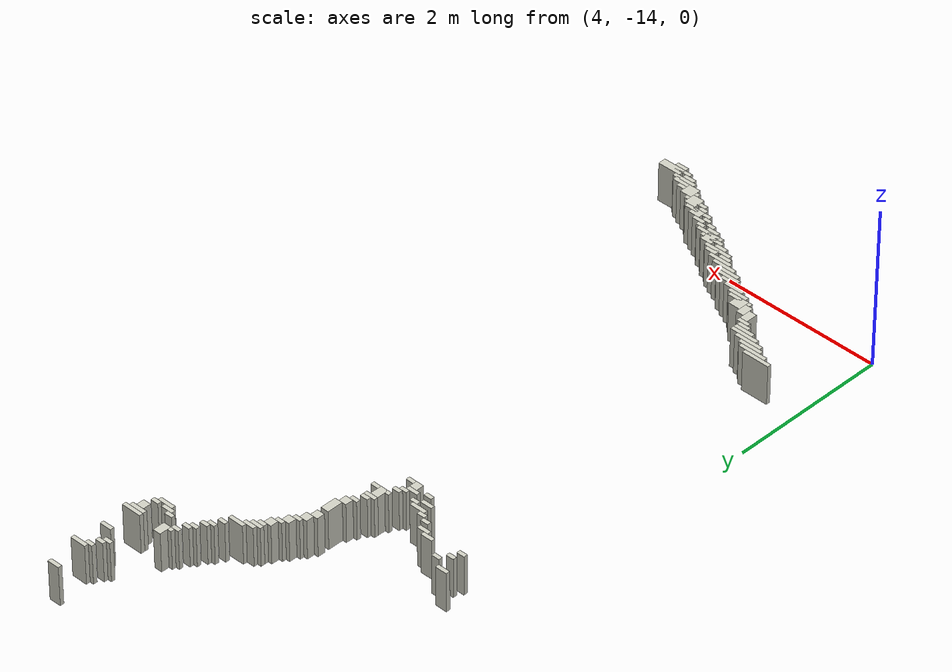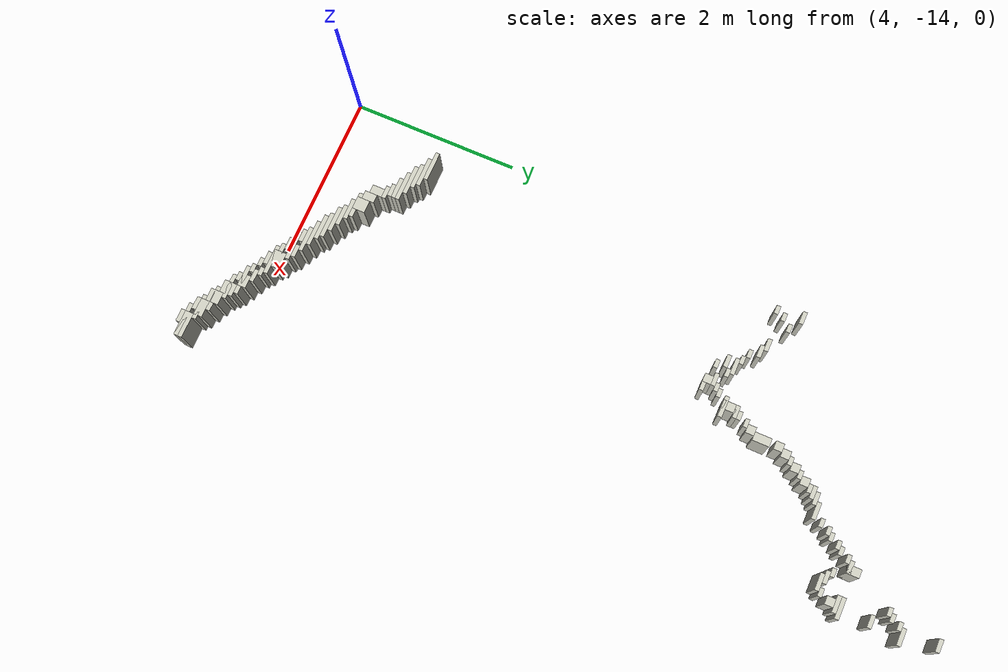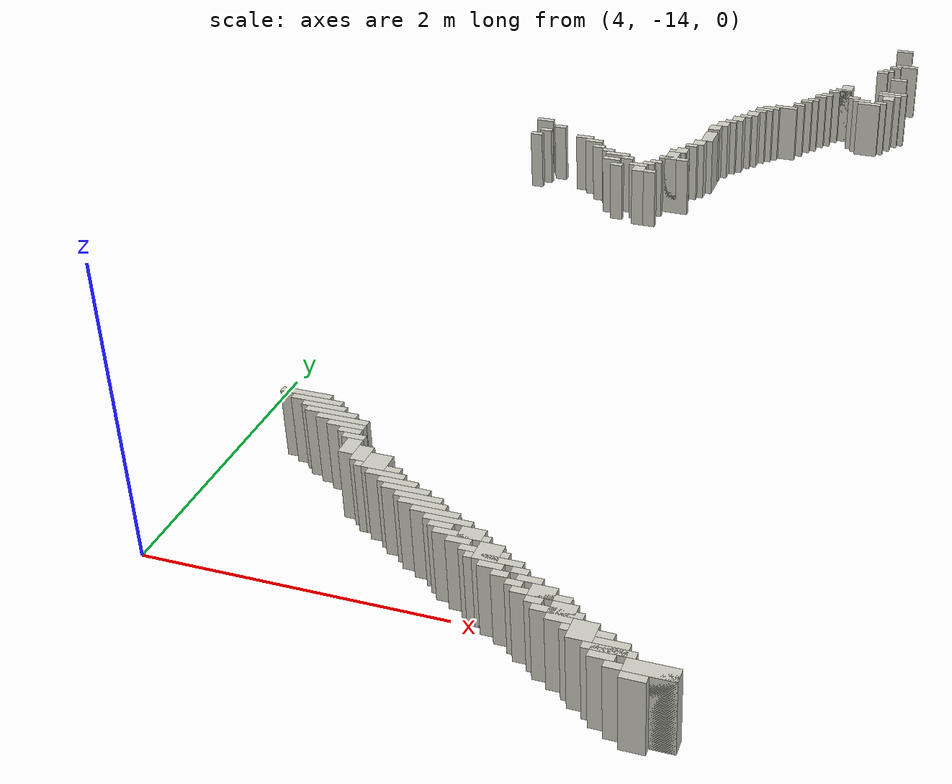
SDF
<sdf version="1.7">
 <world name="my_map_world">
  <model name="wall_391">
   <static>1</static>
   <pose>7.325 -5.575 0.25 0 -0 0</pose>
   <link name="link">
    <collision name="collision"><geometry><box><size>0.15 0.05 0.5</size></box></geometry></collision>
    <visual name="visual">
     <geometry><box><size>0.15 0.05 0.5</size></box></geometry>
     <material>
      <script><uri>file://media/materials/scripts/gazebo.material</uri><name>Gazebo/PaintedWall</name></script>
     </material>
    </visual>
   </link>
  </model>
  <model name="wall_412">
   <static>1</static>
   <pose>7.4 -5.975 0.25 0 -0 0</pose>
   <link name="link">
    <collision name="collision"><geometry><box><size>0.2 0.05 0.5</size></box></geometry></collision>
    <visual name="visual">
     <geometry><box><size>0.2 0.05 0.5</size></box></geometry>
     <material>
      <script><uri>file://media/materials/scripts/gazebo.material</uri><name>Gazebo/PaintedWall</name></script>
     </material>
    </visual>
   </link>
  </model>
  <model name="wall_414">
   <static>1</static>
   <pose>7.3 -6.025 0.25 0 -0 0</pose>
   <link name="link">
    <collision name="collision"><geometry><box><size>0.1 0.05 0.5</size></box></geometry></collision>
    <visual name="visual">
     <geometry><box><size>0.1 0.05 0.5</size></box></geometry>
     <material>
      <script><uri>file://media/materials/scripts/gazebo.material</uri><name>Gazebo/PaintedWall</name></script>
     </material>
    </visual>
   </link>
  </model>
  <model name="wall_419">
   <static>1</static>
   <pose>7.25 -6.125 0.25 0 -0 0</pose>
   <link name="link">
    <collision name="collision"><geometry><box><size>0.1 0.05 0.5</size></box></geometry></collision>
    <visual name="visual">
     <geometry><box><size>0.1 0.05 0.5</size></box></geometry>
     <material>
      <script><uri>file://media/materials/scripts/gazebo.material</uri><name>Gazebo/PaintedWall</name></script>
     </material>
    </visual>
   </link>
  </model>
  <model name="wall_421">
   <static>1</static>
   <pose>7.2 -6.175 0.25 0 -0 0</pose>
   <link name="link">
    <collision name="collision"><geometry><box><size>0.1 0.05 0.5</size></box></geometry></collision>
    <visual name="visual">
     <geometry><box><size>0.1 0.05 0.5</size></box></geometry>
     <material>
      <script><uri>file://media/materials/scripts/gazebo.material</uri><name>Gazebo/PaintedWall</name></script>
     </material>
    </visual>
   </link>
  </model>
  <model name="wall_424">
   <static>1</static>
   <pose>7.375 -6.325 0.25 0 -0 0</pose>
   <link name="link">
    <collision name="collision"><geometry><box><size>0.15 0.05 0.5</size></box></geometry></collision>
    <visual name="visual">
     <geometry><box><size>0.15 0.05 0.5</size></box></geometry>
     <material>
      <script><uri>file://media/materials/scripts/gazebo.material</uri><name>Gazebo/PaintedWall</name></script>
     </material>
    </visual>
   </link>
  </model>
  <model name="wall_435">
   <static>1</static>
   <pose>6.95 -6.675 0.25 0 -0 0</pose>
   <link name="link">
    <collision name="collision"><geometry><box><size>0.1 0.15 0.5</size></box></geometry></collision>
    <visual name="visual">
     <geometry><box><size>0.1 0.15 0.5</size></box></geometry>
     <material>
      <script><uri>file://media/materials/scripts/gazebo.material</uri><name>Gazebo/PaintedWall</name></script>
     </material>
    </visual>
   </link>
  </model>
  <model name="wall_437">
   <static>1</static>
   <pose>7.375 -6.675 0.25 0 -0 0</pose>
   <link name="link">
    <collision name="collision"><geometry><box><size>0.25 0.05 0.5</size></box></geometry></collision>
    <visual name="visual">
     <geometry><box><size>0.25 0.05 0.5</size></box></geometry>
     <material>
      <script><uri>file://media/materials/scripts/gazebo.material</uri><name>Gazebo/PaintedWall</name></script>
     </material>
    </visual>
   </link>
  </model>
  <model name="wall_439">
   <static>1</static>
   <pose>6.925 -6.725 0.25 0 -0 0</pose>
   <link name="link">
    <collision name="collision"><geometry><box><size>0.15 0.05 0.5</size></box></geometry></collision>
    <visual name="visual">
     <geometry><box><size>0.15 0.05 0.5</size></box></geometry>
     <material>
      <script><uri>file://media/materials/scripts/gazebo.material</uri><name>Gazebo/PaintedWall</name></script>
     </material>
    </visual>
   </link>
  </model>
  <model name="wall_440">
   <static>1</static>
   <pose>7.35 -6.725 0.25 0 -0 0</pose>
   <link name="link">
    <collision name="collision"><geometry><box><size>0.2 0.05 0.5</size></box></geometry></collision>
    <visual name="visual">
     <geometry><box><size>0.2 0.05 0.5</size></box></geometry>
     <material>
      <script><uri>file://media/materials/scripts/gazebo.material</uri><name>Gazebo/PaintedWall</name></script>
     </material>
    </visual>
   </link>
  </model>
  <model name="wall_441">
   <static>1</static>
   <pose>6.85 -6.775 0.25 0 -0 0</pose>
   <link name="link">
    <collision name="collision"><geometry><box><size>0.1 0.05 0.5</size></box></geometry></collision>
    <visual name="visual">
     <geometry><box><size>0.1 0.05 0.5</size></box></geometry>
     <material>
      <script><uri>file://media/materials/scripts/gazebo.material</uri><name>Gazebo/PaintedWall</name></script>
     </material>
    </visual>
   </link>
  </model>
  <model name="wall_442">
   <static>1</static>
   <pose>7.35 -6.8 0.25 0 -0 0</pose>
   <link name="link">
    <collision name="collision"><geometry><box><size>0.1 0.1 0.5</size></box></geometry></collision>
    <visual name="visual">
     <geometry><box><size>0.1 0.1 0.5</size></box></geometry>
     <material>
      <script><uri>file://media/materials/scripts/gazebo.material</uri><name>Gazebo/PaintedWall</name></script>
     </material>
    </visual>
   </link>
  </model>
  <model name="wall_445">
   <static>1</static>
   <pose>6.8 -6.875 0.25 0 -0 0</pose>
   <link name="link">
    <collision name="collision"><geometry><box><size>0.1 0.05 0.5</size></box></geometry></collision>
    <visual name="visual">
     <geometry><box><size>0.1 0.05 0.5</size></box></geometry>
     <material>
      <script><uri>file://media/materials/scripts/gazebo.material</uri><name>Gazebo/PaintedWall</name></script>
     </material>
    </visual>
   </link>
  </model>
  <model name="wall_446">
   <static>1</static>
   <pose>7.05 -6.875 0.25 0 -0 0</pose>
   <link name="link">
    <collision name="collision"><geometry><box><size>0.1 0.05 0.5</size></box></geometry></collision>
    <visual name="visual">
     <geometry><box><size>0.1 0.05 0.5</size></box></geometry>
     <material>
      <script><uri>file://media/materials/scripts/gazebo.material</uri><name>Gazebo/PaintedWall</name></script>
     </material>
    </visual>
   </link>
  </model>
  <model name="wall_448">
   <static>1</static>
   <pose>6.75 -6.925 0.25 0 -0 0</pose>
   <link name="link">
    <collision name="collision"><geometry><box><size>0.1 0.05 0.5</size></box></geometry></collision>
    <visual name="visual">
     <geometry><box><size>0.1 0.05 0.5</size></box></geometry>
     <material>
      <script><uri>file://media/materials/scripts/gazebo.material</uri><name>Gazebo/PaintedWall</name></script>
     </material>
    </visual>
   </link>
  </model>
  <model name="wall_449">
   <static>1</static>
   <pose>7.125 -6.925 0.25 0 -0 0</pose>
   <link name="link">
    <collision name="collision"><geometry><box><size>0.15 0.05 0.5</size></box></geometry></collision>
    <visual name="visual">
     <geometry><box><size>0.15 0.05 0.5</size></box></geometry>
     <material>
      <script><uri>file://media/materials/scripts/gazebo.material</uri><name>Gazebo/PaintedWall</name></script>
     </material>
    </visual>
   </link>
  </model>
  <model name="wall_450">
   <static>1</static>
   <pose>7.3 -6.925 0.25 0 -0 0</pose>
   <link name="link">
    <collision name="collision"><geometry><box><size>0.1 0.05 0.5</size></box></geometry></collision>
    <visual name="visual">
     <geometry><box><size>0.1 0.05 0.5</size></box></geometry>
     <material>
      <script><uri>file://media/materials/scripts/gazebo.material</uri><name>Gazebo/PaintedWall</name></script>
     </material>
    </visual>
   </link>
  </model>
  <model name="wall_452">
   <static>1</static>
   <pose>7.2 -6.975 0.25 0 -0 0</pose>
   <link name="link">
    <collision name="collision"><geometry><box><size>0.2 0.05 0.5</size></box></geometry></collision>
    <visual name="visual">
     <geometry><box><size>0.2 0.05 0.5</size></box></geometry>
     <material>
      <script><uri>file://media/materials/scripts/gazebo.material</uri><name>Gazebo/PaintedWall</name></script>
     </material>
    </visual>
   </link>
  </model>
  <model name="wall_454">
   <static>1</static>
   <pose>6.7 -7.025 0.25 0 -0 0</pose>
   <link name="link">
    <collision name="collision"><geometry><box><size>0.1 0.05 0.5</size></box></geometry></collision>
    <visual name="visual">
     <geometry><box><size>0.1 0.05 0.5</size></box></geometry>
     <material>
      <script><uri>file://media/materials/scripts/gazebo.material</uri><name>Gazebo/PaintedWall</name></script>
     </material>
    </visual>
   </link>
  </model>
  <model name="wall_456">
   <static>1</static>
   <pose>6.65 -7.075 0.25 0 -0 0</pose>
   <link name="link">
    <collision name="collision"><geometry><box><size>0.1 0.05 0.5</size></box></geometry></collision>
    <visual name="visual">
     <geometry><box><size>0.1 0.05 0.5</size></box></geometry>
     <material>
      <script><uri>file://media/materials/scripts/gazebo.material</uri><name>Gazebo/PaintedWall</name></script>
     </material>
    </visual>
   </link>
  </model>
  <model name="wall_458">
   <static>1</static>
   <pose>6.6 -7.175 0.25 0 -0 0</pose>
   <link name="link">
    <collision name="collision"><geometry><box><size>0.1 0.05 0.5</size></box></geometry></collision>
    <visual name="visual">
     <geometry><box><size>0.1 0.05 0.5</size></box></geometry>
     <material>
      <script><uri>file://media/materials/scripts/gazebo.material</uri><name>Gazebo/PaintedWall</name></script>
     </material>
    </visual>
   </link>
  </model>
  <model name="wall_461">
   <static>1</static>
   <pose>6.5 -7.275 0.25 0 -0 0</pose>
   <link name="link">
    <collision name="collision"><geometry><box><size>0.2 0.05 0.5</size></box></geometry></collision>
    <visual name="visual">
     <geometry><box><size>0.2 0.05 0.5</size></box></geometry>
     <material>
      <script><uri>file://media/materials/scripts/gazebo.material</uri><name>Gazebo/PaintedWall</name></script>
     </material>
    </visual>
   </link>
  </model>
  <model name="wall_463">
   <static>1</static>
   <pose>6.375 -7.325 0.25 0 -0 0</pose>
   <link name="link">
    <collision name="collision"><geometry><box><size>0.15 0.05 0.5</size></box></geometry></collision>
    <visual name="visual">
     <geometry><box><size>0.15 0.05 0.5</size></box></geometry>
     <material>
      <script><uri>file://media/materials/scripts/gazebo.material</uri><name>Gazebo/PaintedWall</name></script>
     </material>
    </visual>
   </link>
  </model>
  <model name="wall_465">
   <static>1</static>
   <pose>6.325 -7.375 0.25 0 -0 0</pose>
   <link name="link">
    <collision name="collision"><geometry><box><size>0.15 0.05 0.5</size></box></geometry></collision>
    <visual name="visual">
     <geometry><box><size>0.15 0.05 0.5</size></box></geometry>
     <material>
      <script><uri>file://media/materials/scripts/gazebo.material</uri><name>Gazebo/PaintedWall</name></script>
     </material>
    </visual>
   </link>
  </model>
  <model name="wall_467">
   <static>1</static>
   <pose>6.3 -7.425 0.25 0 -0 0</pose>
   <link name="link">
    <collision name="collision"><geometry><box><size>0.1 0.05 0.5</size></box></geometry></collision>
    <visual name="visual">
     <geometry><box><size>0.1 0.05 0.5</size></box></geometry>
     <material>
      <script><uri>file://media/materials/scripts/gazebo.material</uri><name>Gazebo/PaintedWall</name></script>
     </material>
    </visual>
   </link>
  </model>
  <model name="wall_469">
   <static>1</static>
   <pose>6.25 -7.5 0.25 0 -0 0</pose>
   <link name="link">
    <collision name="collision"><geometry><box><size>0.1 0.1 0.5</size></box></geometry></collision>
    <visual name="visual">
     <geometry><box><size>0.1 0.1 0.5</size></box></geometry>
     <material>
      <script><uri>file://media/materials/scripts/gazebo.material</uri><name>Gazebo/PaintedWall</name></script>
     </material>
    </visual>
   </link>
  </model>
  <model name="wall_471">
   <static>1</static>
   <pose>6.2 -7.575 0.25 0 -0 0</pose>
   <link name="link">
    <collision name="collision"><geometry><box><size>0.1 0.05 0.5</size></box></geometry></collision>
    <visual name="visual">
     <geometry><box><size>0.1 0.05 0.5</size></box></geometry>
     <material>
      <script><uri>file://media/materials/scripts/gazebo.material</uri><name>Gazebo/PaintedWall</name></script>
     </material>
    </visual>
   </link>
  </model>
  <model name="wall_473">
   <static>1</static>
   <pose>6.15 -7.65 0.25 0 -0 0</pose>
   <link name="link">
    <collision name="collision"><geometry><box><size>0.1 0.1 0.5</size></box></geometry></collision>
    <visual name="visual">
     <geometry><box><size>0.1 0.1 0.5</size></box></geometry>
     <material>
      <script><uri>file://media/materials/scripts/gazebo.material</uri><name>Gazebo/PaintedWall</name></script>
     </material>
    </visual>
   </link>
  </model>
  <model name="wall_476">
   <static>1</static>
   <pose>6.1 -7.725 0.25 0 -0 0</pose>
   <link name="link">
    <collision name="collision"><geometry><box><size>0.1 0.05 0.5</size></box></geometry></collision>
    <visual name="visual">
     <geometry><box><size>0.1 0.05 0.5</size></box></geometry>
     <material>
      <script><uri>file://media/materials/scripts/gazebo.material</uri><name>Gazebo/PaintedWall</name></script>
     </material>
    </visual>
   </link>
  </model>
  <model name="wall_478">
   <static>1</static>
   <pose>6.05 -7.8 0.25 0 -0 0</pose>
   <link name="link">
    <collision name="collision"><geometry><box><size>0.1 0.1 0.5</size></box></geometry></collision>
    <visual name="visual">
     <geometry><box><size>0.1 0.1 0.5</size></box></geometry>
     <material>
      <script><uri>file://media/materials/scripts/gazebo.material</uri><name>Gazebo/PaintedWall</name></script>
     </material>
    </visual>
   </link>
  </model>
  <model name="wall_480">
   <static>1</static>
   <pose>6 -7.9 0.25 0 -0 0</pose>
   <link name="link">
    <collision name="collision"><geometry><box><size>0.1 0.1 0.5</size></box></geometry></collision>
    <visual name="visual">
     <geometry><box><size>0.1 0.1 0.5</size></box></geometry>
     <material>
      <script><uri>file://media/materials/scripts/gazebo.material</uri><name>Gazebo/PaintedWall</name></script>
     </material>
    </visual>
   </link>
  </model>
  <model name="wall_485">
   <static>1</static>
   <pose>6 -8.1 0.25 0 -0 0</pose>
   <link name="link">
    <collision name="collision"><geometry><box><size>0.1 0.2 0.5</size></box></geometry></collision>
    <visual name="visual">
     <geometry><box><size>0.1 0.2 0.5</size></box></geometry>
     <material>
      <script><uri>file://media/materials/scripts/gazebo.material</uri><name>Gazebo/PaintedWall</name></script>
     </material>
    </visual>
   </link>
  </model>
  <model name="wall_487">
   <static>1</static>
   <pose>4.525 -8.175 0.25 0 -0 0</pose>
   <link name="link">
    <collision name="collision"><geometry><box><size>0.15 0.05 0.5</size></box></geometry></collision>
    <visual name="visual">
     <geometry><box><size>0.15 0.05 0.5</size></box></geometry>
     <material>
      <script><uri>file://media/materials/scripts/gazebo.material</uri><name>Gazebo/PaintedWall</name></script>
     </material>
    </visual>
   </link>
  </model>
  <model name="wall_489">
   <static>1</static>
   <pose>5.95 -8.25 0.25 0 -0 0</pose>
   <link name="link">
    <collision name="collision"><geometry><box><size>0.1 0.1 0.5</size></box></geometry></collision>
    <visual name="visual">
     <geometry><box><size>0.1 0.1 0.5</size></box></geometry>
     <material>
      <script><uri>file://media/materials/scripts/gazebo.material</uri><name>Gazebo/PaintedWall</name></script>
     </material>
    </visual>
   </link>
  </model>
  <model name="wall_492">
   <static>1</static>
   <pose>4.7 -8.275 0.25 0 -0 0</pose>
   <link name="link">
    <collision name="collision"><geometry><box><size>0.1 0.05 0.5</size></box></geometry></collision>
    <visual name="visual">
     <geometry><box><size>0.1 0.05 0.5</size></box></geometry>
     <material>
      <script><uri>file://media/materials/scripts/gazebo.material</uri><name>Gazebo/PaintedWall</name></script>
     </material>
    </visual>
   </link>
  </model>
  <model name="wall_494">
   <static>1</static>
   <pose>5.9 -8.325 0.25 0 -0 0</pose>
   <link name="link">
    <collision name="collision"><geometry><box><size>0.1 0.05 0.5</size></box></geometry></collision>
    <visual name="visual">
     <geometry><box><size>0.1 0.05 0.5</size></box></geometry>
     <material>
      <script><uri>file://media/materials/scripts/gazebo.material</uri><name>Gazebo/PaintedWall</name></script>
     </material>
    </visual>
   </link>
  </model>
  <model name="wall_496">
   <static>1</static>
   <pose>4.6 -8.375 0.25 0 -0 0</pose>
   <link name="link">
    <collision name="collision"><geometry><box><size>0.1 0.05 0.5</size></box></geometry></collision>
    <visual name="visual">
     <geometry><box><size>0.1 0.05 0.5</size></box></geometry>
     <material>
      <script><uri>file://media/materials/scripts/gazebo.material</uri><name>Gazebo/PaintedWall</name></script>
     </material>
    </visual>
   </link>
  </model>
  <model name="wall_499">
   <static>1</static>
   <pose>4.975 -8.425 0.25 0 -0 0</pose>
   <link name="link">
    <collision name="collision"><geometry><box><size>0.15 0.05 0.5</size></box></geometry></collision>
    <visual name="visual">
     <geometry><box><size>0.15 0.05 0.5</size></box></geometry>
     <material>
      <script><uri>file://media/materials/scripts/gazebo.material</uri><name>Gazebo/PaintedWall</name></script>
     </material>
    </visual>
   </link>
  </model>
  <model name="wall_500">
   <static>1</static>
   <pose>5.85 -8.45 0.25 0 -0 0</pose>
   <link name="link">
    <collision name="collision"><geometry><box><size>0.1 0.1 0.5</size></box></geometry></collision>
    <visual name="visual">
     <geometry><box><size>0.1 0.1 0.5</size></box></geometry>
     <material>
      <script><uri>file://media/materials/scripts/gazebo.material</uri><name>Gazebo/PaintedWall</name></script>
     </material>
    </visual>
   </link>
  </model>
  <model name="wall_503">
   <static>1</static>
   <pose>4.55 -8.475 0.25 0 -0 0</pose>
   <link name="link">
    <collision name="collision"><geometry><box><size>0.1 0.05 0.5</size></box></geometry></collision>
    <visual name="visual">
     <geometry><box><size>0.1 0.05 0.5</size></box></geometry>
     <material>
      <script><uri>file://media/materials/scripts/gazebo.material</uri><name>Gazebo/PaintedWall</name></script>
     </material>
    </visual>
   </link>
  </model>
  <model name="wall_504">
   <static>1</static>
   <pose>5.075 -8.475 0.25 0 -0 0</pose>
   <link name="link">
    <collision name="collision"><geometry><box><size>0.15 0.05 0.5</size></box></geometry></collision>
    <visual name="visual">
     <geometry><box><size>0.15 0.05 0.5</size></box></geometry>
     <material>
      <script><uri>file://media/materials/scripts/gazebo.material</uri><name>Gazebo/PaintedWall</name></script>
     </material>
    </visual>
   </link>
  </model>
  <model name="wall_505">
   <static>1</static>
   <pose>5.825 -8.475 0.25 0 -0 0</pose>
   <link name="link">
    <collision name="collision"><geometry><box><size>0.15 0.05 0.5</size></box></geometry></collision>
    <visual name="visual">
     <geometry><box><size>0.15 0.05 0.5</size></box></geometry>
     <material>
      <script><uri>file://media/materials/scripts/gazebo.material</uri><name>Gazebo/PaintedWall</name></script>
     </material>
    </visual>
   </link>
  </model>
  <model name="wall_509">
   <static>1</static>
   <pose>5.8 -8.575 0.25 0 -0 0</pose>
   <link name="link">
    <collision name="collision"><geometry><box><size>0.1 0.15 0.5</size></box></geometry></collision>
    <visual name="visual">
     <geometry><box><size>0.1 0.15 0.5</size></box></geometry>
     <material>
      <script><uri>file://media/materials/scripts/gazebo.material</uri><name>Gazebo/PaintedWall</name></script>
     </material>
    </visual>
   </link>
  </model>
  <model name="wall_511">
   <static>1</static>
   <pose>5.15 -8.575 0.25 0 -0 0</pose>
   <link name="link">
    <collision name="collision"><geometry><box><size>0.1 0.05 0.5</size></box></geometry></collision>
    <visual name="visual">
     <geometry><box><size>0.1 0.05 0.5</size></box></geometry>
     <material>
      <script><uri>file://media/materials/scripts/gazebo.material</uri><name>Gazebo/PaintedWall</name></script>
     </material>
    </visual>
   </link>
  </model>
  <model name="wall_515">
   <static>1</static>
   <pose>5.25 -8.625 0.25 0 -0 0</pose>
   <link name="link">
    <collision name="collision"><geometry><box><size>0.1 0.05 0.5</size></box></geometry></collision>
    <visual name="visual">
     <geometry><box><size>0.1 0.05 0.5</size></box></geometry>
     <material>
      <script><uri>file://media/materials/scripts/gazebo.material</uri><name>Gazebo/PaintedWall</name></script>
     </material>
    </visual>
   </link>
  </model>
  <model name="wall_516">
   <static>1</static>
   <pose>5.825 -8.625 0.25 0 -0 0</pose>
   <link name="link">
    <collision name="collision"><geometry><box><size>0.25 0.05 0.5</size></box></geometry></collision>
    <visual name="visual">
     <geometry><box><size>0.25 0.05 0.5</size></box></geometry>
     <material>
      <script><uri>file://media/materials/scripts/gazebo.material</uri><name>Gazebo/PaintedWall</name></script>
     </material>
    </visual>
   </link>
  </model>
  <model name="wall_520">
   <static>1</static>
   <pose>5.35 -8.675 0.25 0 -0 0</pose>
   <link name="link">
    <collision name="collision"><geometry><box><size>0.2 0.05 0.5</size></box></geometry></collision>
    <visual name="visual">
     <geometry><box><size>0.2 0.05 0.5</size></box></geometry>
     <material>
      <script><uri>file://media/materials/scripts/gazebo.material</uri><name>Gazebo/PaintedWall</name></script>
     </material>
    </visual>
   </link>
  </model>
  <model name="wall_523">
   <static>1</static>
   <pose>5.45 -8.725 0.25 0 -0 0</pose>
   <link name="link">
    <collision name="collision"><geometry><box><size>0.1 0.05 0.5</size></box></geometry></collision>
    <visual name="visual">
     <geometry><box><size>0.1 0.05 0.5</size></box></geometry>
     <material>
      <script><uri>file://media/materials/scripts/gazebo.material</uri><name>Gazebo/PaintedWall</name></script>
     </material>
    </visual>
   </link>
  </model>
  <model name="wall_524">
   <static>1</static>
   <pose>5.7 -8.725 0.25 0 -0 0</pose>
   <link name="link">
    <collision name="collision"><geometry><box><size>0.1 0.05 0.5</size></box></geometry></collision>
    <visual name="visual">
     <geometry><box><size>0.1 0.05 0.5</size></box></geometry>
     <material>
      <script><uri>file://media/materials/scripts/gazebo.material</uri><name>Gazebo/PaintedWall</name></script>
     </material>
    </visual>
   </link>
  </model>
  <model name="wall_528">
   <static>1</static>
   <pose>5.325 -8.775 0.25 0 -0 0</pose>
   <link name="link">
    <collision name="collision"><geometry><box><size>0.15 0.05 0.5</size></box></geometry></collision>
    <visual name="visual">
     <geometry><box><size>0.15 0.05 0.5</size></box></geometry>
     <material>
      <script><uri>file://media/materials/scripts/gazebo.material</uri><name>Gazebo/PaintedWall</name></script>
     </material>
    </visual>
   </link>
  </model>
  <model name="wall_529">
   <static>1</static>
   <pose>5.65 -8.775 0.25 0 -0 0</pose>
   <link name="link">
    <collision name="collision"><geometry><box><size>0.1 0.05 0.5</size></box></geometry></collision>
    <visual name="visual">
     <geometry><box><size>0.1 0.05 0.5</size></box></geometry>
     <material>
      <script><uri>file://media/materials/scripts/gazebo.material</uri><name>Gazebo/PaintedWall</name></script>
     </material>
    </visual>
   </link>
  </model>
  <model name="wall_531">
   <static>1</static>
   <pose>5.575 -8.825 0.25 0 -0 0</pose>
   <link name="link">
    <collision name="collision"><geometry><box><size>0.15 0.05 0.5</size></box></geometry></collision>
    <visual name="visual">
     <geometry><box><size>0.15 0.05 0.5</size></box></geometry>
     <material>
      <script><uri>file://media/materials/scripts/gazebo.material</uri><name>Gazebo/PaintedWall</name></script>
     </material>
    </visual>
   </link>
  </model>
  <model name="wall_534">
   <static>1</static>
   <pose>5.4 -8.875 0.25 0 -0 0</pose>
   <link name="link">
    <collision name="collision"><geometry><box><size>0.1 0.05 0.5</size></box></geometry></collision>
    <visual name="visual">
     <geometry><box><size>0.1 0.05 0.5</size></box></geometry>
     <material>
      <script><uri>file://media/materials/scripts/gazebo.material</uri><name>Gazebo/PaintedWall</name></script>
     </material>
    </visual>
   </link>
  </model>
  <model name="wall_535">
   <static>1</static>
   <pose>5.6 -8.9 0.25 0 -0 0</pose>
   <link name="link">
    <collision name="collision"><geometry><box><size>0.1 0.1 0.5</size></box></geometry></collision>
    <visual name="visual">
     <geometry><box><size>0.1 0.1 0.5</size></box></geometry>
     <material>
      <script><uri>file://media/materials/scripts/gazebo.material</uri><name>Gazebo/PaintedWall</name></script>
     </material>
    </visual>
   </link>
  </model>
  <model name="wall_538">
   <static>1</static>
   <pose>5.7 -8.925 0.25 0 -0 0</pose>
   <link name="link">
    <collision name="collision"><geometry><box><size>0.1 0.05 0.5</size></box></geometry></collision>
    <visual name="visual">
     <geometry><box><size>0.1 0.05 0.5</size></box></geometry>
     <material>
      <script><uri>file://media/materials/scripts/gazebo.material</uri><name>Gazebo/PaintedWall</name></script>
     </material>
    </visual>
   </link>
  </model>
  <model name="wall_686">
   <static>1</static>
   <pose>4.525 -12.775 0.25 0 -0 0</pose>
   <link name="link">
    <collision name="collision"><geometry><box><size>0.35 0.05 0.5</size></box></geometry></collision>
    <visual name="visual">
     <geometry><box><size>0.35 0.05 0.5</size></box></geometry>
     <material>
      <script><uri>file://media/materials/scripts/gazebo.material</uri><name>Gazebo/PaintedWall</name></script>
     </material>
    </visual>
   </link>
  </model>
  <model name="wall_688">
   <static>1</static>
   <pose>4.625 -12.825 0.25 0 -0 0</pose>
   <link name="link">
    <collision name="collision"><geometry><box><size>0.35 0.05 0.5</size></box></geometry></collision>
    <visual name="visual">
     <geometry><box><size>0.35 0.05 0.5</size></box></geometry>
     <material>
      <script><uri>file://media/materials/scripts/gazebo.material</uri><name>Gazebo/PaintedWall</name></script>
     </material>
    </visual>
   </link>
  </model>
  <model name="wall_690">
   <static>1</static>
   <pose>4.7 -12.875 0.25 0 -0 0</pose>
   <link name="link">
    <collision name="collision"><geometry><box><size>0.3 0.05 0.5</size></box></geometry></collision>
    <visual name="visual">
     <geometry><box><size>0.3 0.05 0.5</size></box></geometry>
     <material>
      <script><uri>file://media/materials/scripts/gazebo.material</uri><name>Gazebo/PaintedWall</name></script>
     </material>
    </visual>
   </link>
  </model>
  <model name="wall_692">
   <static>1</static>
   <pose>4.775 -12.925 0.25 0 -0 0</pose>
   <link name="link">
    <collision name="collision"><geometry><box><size>0.35 0.05 0.5</size></box></geometry></collision>
    <visual name="visual">
     <geometry><box><size>0.35 0.05 0.5</size></box></geometry>
     <material>
      <script><uri>file://media/materials/scripts/gazebo.material</uri><name>Gazebo/PaintedWall</name></script>
     </material>
    </visual>
   </link>
  </model>
  <model name="wall_694">
   <static>1</static>
   <pose>4.875 -12.975 0.25 0 -0 0</pose>
   <link name="link">
    <collision name="collision"><geometry><box><size>0.35 0.05 0.5</size></box></geometry></collision>
    <visual name="visual">
     <geometry><box><size>0.35 0.05 0.5</size></box></geometry>
     <material>
      <script><uri>file://media/materials/scripts/gazebo.material</uri><name>Gazebo/PaintedWall</name></script>
     </material>
    </visual>
   </link>
  </model>
  <model name="wall_696">
   <static>1</static>
   <pose>4.925 -13.025 0.25 0 -0 0</pose>
   <link name="link">
    <collision name="collision"><geometry><box><size>0.25 0.05 0.5</size></box></geometry></collision>
    <visual name="visual">
     <geometry><box><size>0.25 0.05 0.5</size></box></geometry>
     <material>
      <script><uri>file://media/materials/scripts/gazebo.material</uri><name>Gazebo/PaintedWall</name></script>
     </material>
    </visual>
   </link>
  </model>
  <model name="wall_698">
   <static>1</static>
   <pose>4.975 -13.075 0.25 0 -0 0</pose>
   <link name="link">
    <collision name="collision"><geometry><box><size>0.15 0.05 0.5</size></box></geometry></collision>
    <visual name="visual">
     <geometry><box><size>0.15 0.05 0.5</size></box></geometry>
     <material>
      <script><uri>file://media/materials/scripts/gazebo.material</uri><name>Gazebo/PaintedWall</name></script>
     </material>
    </visual>
   </link>
  </model>
  <model name="wall_700">
   <static>1</static>
   <pose>5.025 -13.125 0.25 0 -0 0</pose>
   <link name="link">
    <collision name="collision"><geometry><box><size>0.15 0.05 0.5</size></box></geometry></collision>
    <visual name="visual">
     <geometry><box><size>0.15 0.05 0.5</size></box></geometry>
     <material>
      <script><uri>file://media/materials/scripts/gazebo.material</uri><name>Gazebo/PaintedWall</name></script>
     </material>
    </visual>
   </link>
  </model>
  <model name="wall_702">
   <static>1</static>
   <pose>5.05 -13.225 0.25 0 -0 0</pose>
   <link name="link">
    <collision name="collision"><geometry><box><size>0.1 0.15 0.5</size></box></geometry></collision>
    <visual name="visual">
     <geometry><box><size>0.1 0.15 0.5</size></box></geometry>
     <material>
      <script><uri>file://media/materials/scripts/gazebo.material</uri><name>Gazebo/PaintedWall</name></script>
     </material>
    </visual>
   </link>
  </model>
  <model name="wall_704">
   <static>1</static>
   <pose>5.15 -13.275 0.25 0 -0 0</pose>
   <link name="link">
    <collision name="collision"><geometry><box><size>0.1 0.15 0.5</size></box></geometry></collision>
    <visual name="visual">
     <geometry><box><size>0.1 0.15 0.5</size></box></geometry>
     <material>
      <script><uri>file://media/materials/scripts/gazebo.material</uri><name>Gazebo/PaintedWall</name></script>
     </material>
    </visual>
   </link>
  </model>
  <model name="wall_706">
   <static>1</static>
   <pose>5.275 -13.325 0.25 0 -0 0</pose>
   <link name="link">
    <collision name="collision"><geometry><box><size>0.15 0.15 0.5</size></box></geometry></collision>
    <visual name="visual">
     <geometry><box><size>0.15 0.15 0.5</size></box></geometry>
     <material>
      <script><uri>file://media/materials/scripts/gazebo.material</uri><name>Gazebo/PaintedWall</name></script>
     </material>
    </visual>
   </link>
  </model>
  <model name="wall_709">
   <static>1</static>
   <pose>5.3 -13.375 0.25 0 -0 0</pose>
   <link name="link">
    <collision name="collision"><geometry><box><size>0.3 0.05 0.5</size></box></geometry></collision>
    <visual name="visual">
     <geometry><box><size>0.3 0.05 0.5</size></box></geometry>
     <material>
      <script><uri>file://media/materials/scripts/gazebo.material</uri><name>Gazebo/PaintedWall</name></script>
     </material>
    </visual>
   </link>
  </model>
  <model name="wall_711">
   <static>1</static>
   <pose>5.375 -13.425 0.25 0 -0 0</pose>
   <link name="link">
    <collision name="collision"><geometry><box><size>0.25 0.05 0.5</size></box></geometry></collision>
    <visual name="visual">
     <geometry><box><size>0.25 0.05 0.5</size></box></geometry>
     <material>
      <script><uri>file://media/materials/scripts/gazebo.material</uri><name>Gazebo/PaintedWall</name></script>
     </material>
    </visual>
   </link>
  </model>
  <model name="wall_713">
   <static>1</static>
   <pose>5.475 -13.475 0.25 0 -0 0</pose>
   <link name="link">
    <collision name="collision"><geometry><box><size>0.25 0.05 0.5</size></box></geometry></collision>
    <visual name="visual">
     <geometry><box><size>0.25 0.05 0.5</size></box></geometry>
     <material>
      <script><uri>file://media/materials/scripts/gazebo.material</uri><name>Gazebo/PaintedWall</name></script>
     </material>
    </visual>
   </link>
  </model>
  <model name="wall_715">
   <static>1</static>
   <pose>5.55 -13.525 0.25 0 -0 0</pose>
   <link name="link">
    <collision name="collision"><geometry><box><size>0.3 0.05 0.5</size></box></geometry></collision>
    <visual name="visual">
     <geometry><box><size>0.3 0.05 0.5</size></box></geometry>
     <material>
      <script><uri>file://media/materials/scripts/gazebo.material</uri><name>Gazebo/PaintedWall</name></script>
     </material>
    </visual>
   </link>
  </model>
  <model name="wall_717">
   <static>1</static>
   <pose>5.65 -13.575 0.25 0 -0 0</pose>
   <link name="link">
    <collision name="collision"><geometry><box><size>0.3 0.05 0.5</size></box></geometry></collision>
    <visual name="visual">
     <geometry><box><size>0.3 0.05 0.5</size></box></geometry>
     <material>
      <script><uri>file://media/materials/scripts/gazebo.material</uri><name>Gazebo/PaintedWall</name></script>
     </material>
    </visual>
   </link>
  </model>
  <model name="wall_719">
   <static>1</static>
   <pose>5.7 -13.625 0.25 0 -0 0</pose>
   <link name="link">
    <collision name="collision"><geometry><box><size>0.3 0.05 0.5</size></box></geometry></collision>
    <visual name="visual">
     <geometry><box><size>0.3 0.05 0.5</size></box></geometry>
     <material>
      <script><uri>file://media/materials/scripts/gazebo.material</uri><name>Gazebo/PaintedWall</name></script>
     </material>
    </visual>
   </link>
  </model>
  <model name="wall_720">
   <static>1</static>
   <pose>5.8 -13.675 0.25 0 -0 0</pose>
   <link name="link">
    <collision name="collision"><geometry><box><size>0.3 0.05 0.5</size></box></geometry></collision>
    <visual name="visual">
     <geometry><box><size>0.3 0.05 0.5</size></box></geometry>
     <material>
      <script><uri>file://media/materials/scripts/gazebo.material</uri><name>Gazebo/PaintedWall</name></script>
     </material>
    </visual>
   </link>
  </model>
  <model name="wall_722">
   <static>1</static>
   <pose>5.9 -13.725 0.25 0 -0 0</pose>
   <link name="link">
    <collision name="collision"><geometry><box><size>0.3 0.05 0.5</size></box></geometry></collision>
    <visual name="visual">
     <geometry><box><size>0.3 0.05 0.5</size></box></geometry>
     <material>
      <script><uri>file://media/materials/scripts/gazebo.material</uri><name>Gazebo/PaintedWall</name></script>
     </material>
    </visual>
   </link>
  </model>
  <model name="wall_724">
   <static>1</static>
   <pose>5.875 -13.775 0.25 0 -0 0</pose>
   <link name="link">
    <collision name="collision"><geometry><box><size>0.15 0.05 0.5</size></box></geometry></collision>
    <visual name="visual">
     <geometry><box><size>0.15 0.05 0.5</size></box></geometry>
     <material>
      <script><uri>file://media/materials/scripts/gazebo.material</uri><name>Gazebo/PaintedWall</name></script>
     </material>
    </visual>
   </link>
  </model>
  <model name="wall_725">
   <static>1</static>
   <pose>6.075 -13.8 0.25 0 -0 0</pose>
   <link name="link">
    <collision name="collision"><geometry><box><size>0.15 0.1 0.5</size></box></geometry></collision>
    <visual name="visual">
     <geometry><box><size>0.15 0.1 0.5</size></box></geometry>
     <material>
      <script><uri>file://media/materials/scripts/gazebo.material</uri><name>Gazebo/PaintedWall</name></script>
     </material>
    </visual>
   </link>
  </model>
  <model name="wall_727">
   <static>1</static>
   <pose>6.025 -13.825 0.25 0 -0 0</pose>
   <link name="link">
    <collision name="collision"><geometry><box><size>0.35 0.05 0.5</size></box></geometry></collision>
    <visual name="visual">
     <geometry><box><size>0.35 0.05 0.5</size></box></geometry>
     <material>
      <script><uri>file://media/materials/scripts/gazebo.material</uri><name>Gazebo/PaintedWall</name></script>
     </material>
    </visual>
   </link>
  </model>
  <model name="wall_729">
   <static>1</static>
   <pose>6.025 -13.875 0.25 0 -0 0</pose>
   <link name="link">
    <collision name="collision"><geometry><box><size>0.15 0.05 0.5</size></box></geometry></collision>
    <visual name="visual">
     <geometry><box><size>0.15 0.05 0.5</size></box></geometry>
     <material>
      <script><uri>file://media/materials/scripts/gazebo.material</uri><name>Gazebo/PaintedWall</name></script>
     </material>
    </visual>
   </link>
  </model>
  <model name="wall_730">
   <static>1</static>
   <pose>6.225 -13.925 0.25 0 -0 0</pose>
   <link name="link">
    <collision name="collision"><geometry><box><size>0.15 0.15 0.5</size></box></geometry></collision>
    <visual name="visual">
     <geometry><box><size>0.15 0.15 0.5</size></box></geometry>
     <material>
      <script><uri>file://media/materials/scripts/gazebo.material</uri><name>Gazebo/PaintedWall</name></script>
     </material>
    </visual>
   </link>
  </model>
  <model name="wall_732">
   <static>1</static>
   <pose>6.2 -13.925 0.25 0 -0 0</pose>
   <link name="link">
    <collision name="collision"><geometry><box><size>0.3 0.05 0.5</size></box></geometry></collision>
    <visual name="visual">
     <geometry><box><size>0.3 0.05 0.5</size></box></geometry>
     <material>
      <script><uri>file://media/materials/scripts/gazebo.material</uri><name>Gazebo/PaintedWall</name></script>
     </material>
    </visual>
   </link>
  </model>
  <model name="wall_733">
   <static>1</static>
   <pose>6.275 -13.975 0.25 0 -0 0</pose>
   <link name="link">
    <collision name="collision"><geometry><box><size>0.35 0.05 0.5</size></box></geometry></collision>
    <visual name="visual">
     <geometry><box><size>0.35 0.05 0.5</size></box></geometry>
     <material>
      <script><uri>file://media/materials/scripts/gazebo.material</uri><name>Gazebo/PaintedWall</name></script>
     </material>
    </visual>
   </link>
  </model>
  <model name="wall_735">
   <static>1</static>
   <pose>6.275 -14.025 0.25 0 -0 0</pose>
   <link name="link">
    <collision name="collision"><geometry><box><size>0.15 0.05 0.5</size></box></geometry></collision>
    <visual name="visual">
     <geometry><box><size>0.15 0.05 0.5</size></box></geometry>
     <material>
      <script><uri>file://media/materials/scripts/gazebo.material</uri><name>Gazebo/PaintedWall</name></script>
     </material>
    </visual>
   </link>
  </model>
  <model name="wall_736">
   <static>1</static>
   <pose>6.45 -14.025 0.25 0 -0 0</pose>
   <link name="link">
    <collision name="collision"><geometry><box><size>0.1 0.05 0.5</size></box></geometry></collision>
    <visual name="visual">
     <geometry><box><size>0.1 0.05 0.5</size></box></geometry>
     <material>
      <script><uri>file://media/materials/scripts/gazebo.material</uri><name>Gazebo/PaintedWall</name></script>
     </material>
    </visual>
   </link>
  </model>
  <model name="wall_738">
   <static>1</static>
   <pose>6.35 -14.075 0.25 0 -0 0</pose>
   <link name="link">
    <collision name="collision"><geometry><box><size>0.1 0.05 0.5</size></box></geometry></collision>
    <visual name="visual">
     <geometry><box><size>0.1 0.05 0.5</size></box></geometry>
     <material>
      <script><uri>file://media/materials/scripts/gazebo.material</uri><name>Gazebo/PaintedWall</name></script>
     </material>
    </visual>
   </link>
  </model>
  <model name="wall_739">
   <static>1</static>
   <pose>6.525 -14.075 0.25 0 -0 0</pose>
   <link name="link">
    <collision name="collision"><geometry><box><size>0.15 0.05 0.5</size></box></geometry></collision>
    <visual name="visual">
     <geometry><box><size>0.15 0.05 0.5</size></box></geometry>
     <material>
      <script><uri>file://media/materials/scripts/gazebo.material</uri><name>Gazebo/PaintedWall</name></script>
     </material>
    </visual>
   </link>
  </model>
  <model name="wall_741">
   <static>1</static>
   <pose>6.45 -14.125 0.25 0 -0 0</pose>
   <link name="link">
    <collision name="collision"><geometry><box><size>0.1 0.05 0.5</size></box></geometry></collision>
    <visual name="visual">
     <geometry><box><size>0.1 0.05 0.5</size></box></geometry>
     <material>
      <script><uri>file://media/materials/scripts/gazebo.material</uri><name>Gazebo/PaintedWall</name></script>
     </material>
    </visual>
   </link>
  </model>
  <model name="wall_742">
   <static>1</static>
   <pose>6.625 -14.15 0.25 0 -0 0</pose>
   <link name="link">
    <collision name="collision"><geometry><box><size>0.15 0.1 0.5</size></box></geometry></collision>
    <visual name="visual">
     <geometry><box><size>0.15 0.1 0.5</size></box></geometry>
     <material>
      <script><uri>file://media/materials/scripts/gazebo.material</uri><name>Gazebo/PaintedWall</name></script>
     </material>
    </visual>
   </link>
  </model>
  <model name="wall_744">
   <static>1</static>
   <pose>6.625 -14.175 0.25 0 -0 0</pose>
   <link name="link">
    <collision name="collision"><geometry><box><size>0.35 0.05 0.5</size></box></geometry></collision>
    <visual name="visual">
     <geometry><box><size>0.35 0.05 0.5</size></box></geometry>
     <material>
      <script><uri>file://media/materials/scripts/gazebo.material</uri><name>Gazebo/PaintedWall</name></script>
     </material>
    </visual>
   </link>
  </model>
  <model name="wall_745">
   <static>1</static>
   <pose>6.6 -14.225 0.25 0 -0 0</pose>
   <link name="link">
    <collision name="collision"><geometry><box><size>0.1 0.05 0.5</size></box></geometry></collision>
    <visual name="visual">
     <geometry><box><size>0.1 0.05 0.5</size></box></geometry>
     <material>
      <script><uri>file://media/materials/scripts/gazebo.material</uri><name>Gazebo/PaintedWall</name></script>
     </material>
    </visual>
   </link>
  </model>
  <model name="wall_746">
   <static>1</static>
   <pose>6.775 -14.275 0.25 0 -0 0</pose>
   <link name="link">
    <collision name="collision"><geometry><box><size>0.15 0.15 0.5</size></box></geometry></collision>
    <visual name="visual">
     <geometry><box><size>0.15 0.15 0.5</size></box></geometry>
     <material>
      <script><uri>file://media/materials/scripts/gazebo.material</uri><name>Gazebo/PaintedWall</name></script>
     </material>
    </visual>
   </link>
  </model>
  <model name="wall_748">
   <static>1</static>
   <pose>6.75 -14.275 0.25 0 -0 0</pose>
   <link name="link">
    <collision name="collision"><geometry><box><size>0.3 0.05 0.5</size></box></geometry></collision>
    <visual name="visual">
     <geometry><box><size>0.3 0.05 0.5</size></box></geometry>
     <material>
      <script><uri>file://media/materials/scripts/gazebo.material</uri><name>Gazebo/PaintedWall</name></script>
     </material>
    </visual>
   </link>
  </model>
  <model name="wall_750">
   <static>1</static>
   <pose>6.925 -14.375 0.25 0 -0 0</pose>
   <link name="link">
    <collision name="collision"><geometry><box><size>0.15 0.15 0.5</size></box></geometry></collision>
    <visual name="visual">
     <geometry><box><size>0.15 0.15 0.5</size></box></geometry>
     <material>
      <script><uri>file://media/materials/scripts/gazebo.material</uri><name>Gazebo/PaintedWall</name></script>
     </material>
    </visual>
   </link>
  </model>
  <model name="wall_752">
   <static>1</static>
   <pose>6.95 -14.375 0.25 0 -0 0</pose>
   <link name="link">
    <collision name="collision"><geometry><box><size>0.3 0.05 0.5</size></box></geometry></collision>
    <visual name="visual">
     <geometry><box><size>0.3 0.05 0.5</size></box></geometry>
     <material>
      <script><uri>file://media/materials/scripts/gazebo.material</uri><name>Gazebo/PaintedWall</name></script>
     </material>
    </visual>
   </link>
  </model>
  <model name="wall_754">
   <static>1</static>
   <pose>7.1 -14.45 0.25 0 -0 0</pose>
   <link name="link">
    <collision name="collision"><geometry><box><size>0.2 0.1 0.5</size></box></geometry></collision>
    <visual name="visual">
     <geometry><box><size>0.2 0.1 0.5</size></box></geometry>
     <material>
      <script><uri>file://media/materials/scripts/gazebo.material</uri><name>Gazebo/PaintedWall</name></script>
     </material>
    </visual>
   </link>
  </model>
  <model name="wall_756">
   <static>1</static>
   <pose>7.1 -14.475 0.25 0 -0 0</pose>
   <link name="link">
    <collision name="collision"><geometry><box><size>0.3 0.05 0.5</size></box></geometry></collision>
    <visual name="visual">
     <geometry><box><size>0.3 0.05 0.5</size></box></geometry>
     <material>
      <script><uri>file://media/materials/scripts/gazebo.material</uri><name>Gazebo/PaintedWall</name></script>
     </material>
    </visual>
   </link>
  </model>
  <model name="wall_758">
   <static>1</static>
   <pose>7.075 -14.525 0.25 0 -0 0</pose>
   <link name="link">
    <collision name="collision"><geometry><box><size>0.15 0.05 0.5</size></box></geometry></collision>
    <visual name="visual">
     <geometry><box><size>0.15 0.05 0.5</size></box></geometry>
     <material>
      <script><uri>file://media/materials/scripts/gazebo.material</uri><name>Gazebo/PaintedWall</name></script>
     </material>
    </visual>
   </link>
  </model>
  <model name="wall_759">
   <static>1</static>
   <pose>7.35 -14.55 0.25 0 -0 0</pose>
   <link name="link">
    <collision name="collision"><geometry><box><size>0.3 0.1 0.5</size></box></geometry></collision>
    <visual name="visual">
     <geometry><box><size>0.3 0.1 0.5</size></box></geometry>
     <material>
      <script><uri>file://media/materials/scripts/gazebo.material</uri><name>Gazebo/PaintedWall</name></script>
     </material>
    </visual>
   </link>
  </model>
  <model name="wall_761">
   <static>1</static>
   <pose>7.3 -14.575 0.25 0 -0 0</pose>
   <link name="link">
    <collision name="collision"><geometry><box><size>0.4 0.05 0.5</size></box></geometry></collision>
    <visual name="visual">
     <geometry><box><size>0.4 0.05 0.5</size></box></geometry>
     <material>
      <script><uri>file://media/materials/scripts/gazebo.material</uri><name>Gazebo/PaintedWall</name></script>
     </material>
    </visual>
   </link>
  </model>
  <model name="wall_763">
   <static>1</static>
   <pose>7.275 -14.625 0.25 0 -0 0</pose>
   <link name="link">
    <collision name="collision"><geometry><box><size>0.15 0.05 0.5</size></box></geometry></collision>
    <visual name="visual">
     <geometry><box><size>0.15 0.05 0.5</size></box></geometry>
     <material>
      <script><uri>file://media/materials/scripts/gazebo.material</uri><name>Gazebo/PaintedWall</name></script>
     </material>
    </visual>
   </link>
  </model>
 </world>
</sdf>
